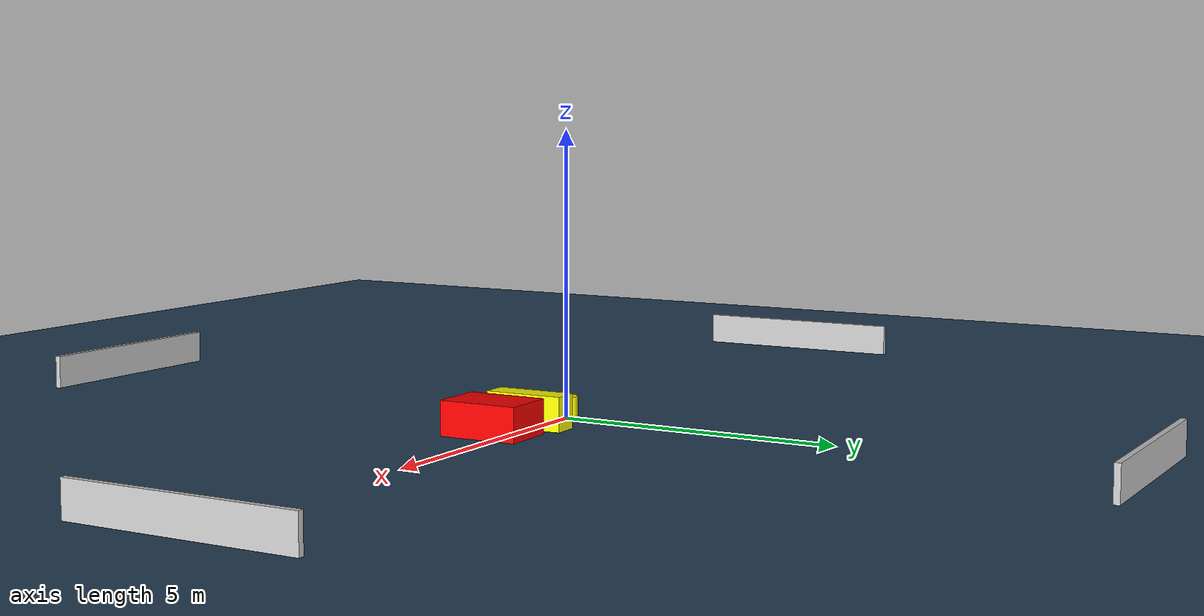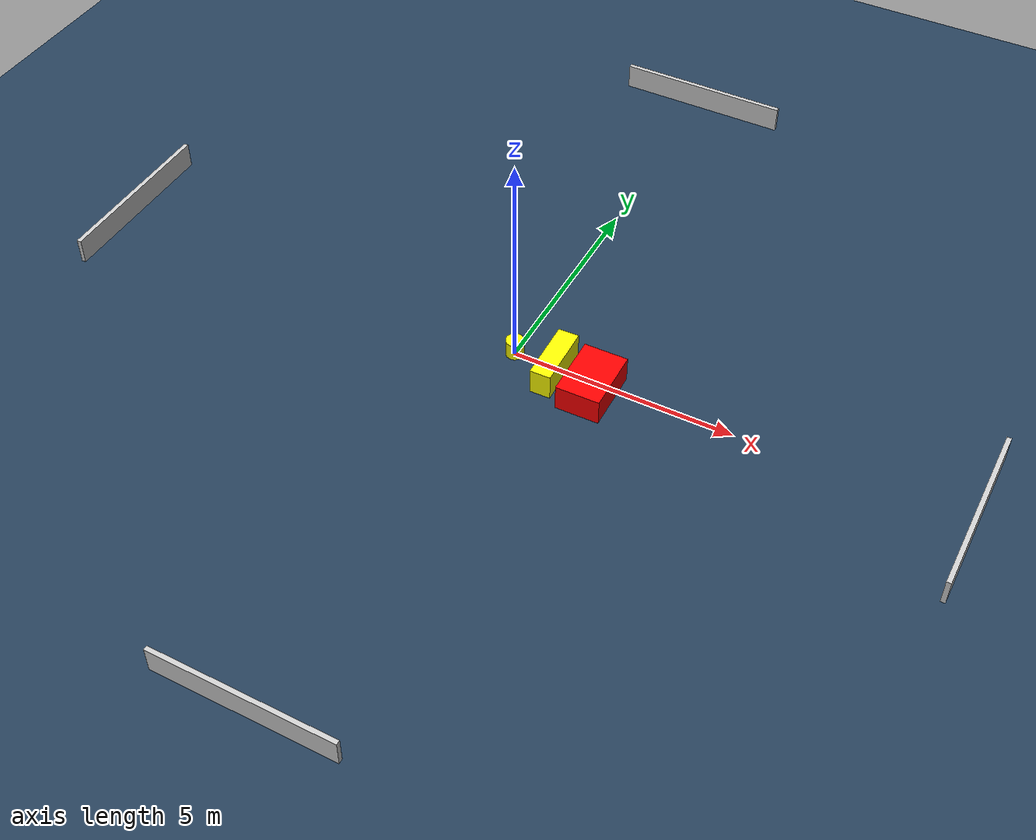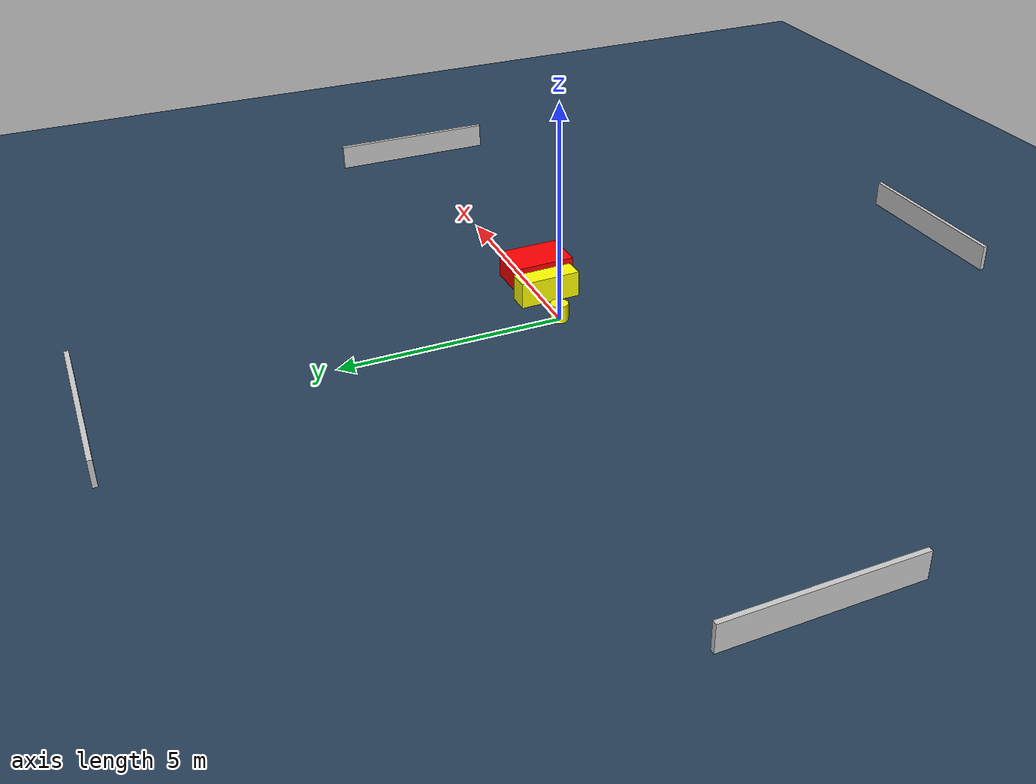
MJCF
<?xml version="1.0" ?>
<mujoco model="generated_environment">
  <option timestep="0.01" integrator="RK4" cone="elliptic"/>
  <default>
    <geom density="1"/>
  </default>
  <asset>
    <texture builtin="gradient" height="3072" name="skybox" rgb1="0.3 0.5 0.7" rgb2="0 0 0" type="skybox" width="512"/>
    <texture builtin="checker" height="300" name="groundplane" rgb1="0.2 0.3 0.4" rgb2="0.1 0.2 0.3" type="2d" width="300"/>
    <material name="groundplane" reflectance="0.2" texrepeat="5 5" texture="groundplane"/>
  </asset>
  <worldbody>
    <light dir="0 0 -1" directional="true" pos="0 0 1.5"/>
    <geom condim="3" friction="0.5 0.005 0.001" material="groundplane" name="floor" pos="0 0 0" size="0 0 0.05" type="plane"/>
    <body name="walls">
      <geom name="wall_1" condim="4" pos="-10.0 0.0 0.3" rgba="0.800000011920929 0.800000011920929 0.800000011920929 1.0" size="0.05 2.0 0.3" type="box"/>
      <geom name="wall_2" condim="4" pos="10.0 0.0 0.3" rgba="0.800000011920929 0.800000011920929 0.800000011920929 1.0" size="0.05 2.0 0.3" type="box"/>
      <geom name="wall_3" condim="4" pos="0.0 -10.0 0.3" rgba="0.800000011920929 0.800000011920929 0.800000011920929 1.0" size="2.0 0.05 0.3" type="box"/>
      <geom name="wall_4" condim="4" pos="0.0 10.0 0.3" rgba="0.800000011920929 0.800000011920929 0.800000011920929 1.0" size="2.0 0.05 0.3" type="box"/>
    </body>
    <body name="robot">
      <joint name="joint_x" type="slide" pos="0 0 0" axis="1 0 0"/>
      <joint name="joint_y" type="slide" pos="0 0 0" axis="0 1 0"/>
      <geom name="robot" type="cylinder" pos="0.0 0.0 0.2" size="0.2 0.2 0.0" mass="5.0" friction="1.0 0.005 0.0001" condim="4" rgba="1.0 1.0 0.0 1.0"/>
    </body>
    <body name="obstacle_1_movable">
      <geom name="obstacle_1_movable" condim="4" pos="1.0068866477330412 -0.1313695526879732 0.3" euler="0 0 271.4275307715024" friction="0.0 0.005 0.001" rgba="1.0 1.0 0.0 1.0" size="0.6945067052542531 0.23059656708699605 0.3" type="box" mass="0.1"/>
      <joint type="free"/>
    </body>
    <body name="obstacle_2_static">
      <geom name="obstacle_2_static" condim="4" pos="1.946380916837359 -0.28703823114158095 0.3" euler="0 0 0.9304947600343993" friction="0.0 0.005 0.001" rgba="1.0 0.0 0.0 1.0" size="0.4903376191626012 0.70484294641185 0.3" type="box"/>
    </body>
  </worldbody>
  <actuator>
    <motor name="actuator_x" joint="joint_x" gear="1" ctrlrange="-1 1"/>
    <motor name="actuator_y" joint="joint_y" gear="1" ctrlrange="-1 1"/>
  </actuator>
</mujoco>
